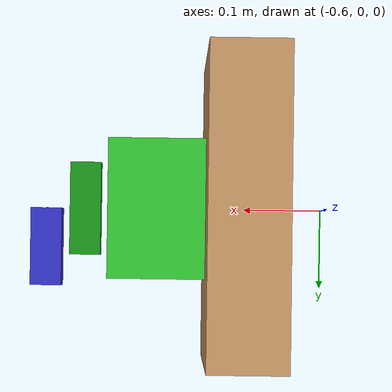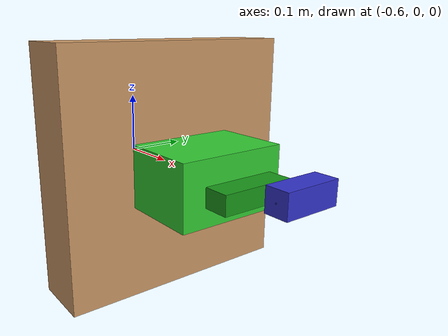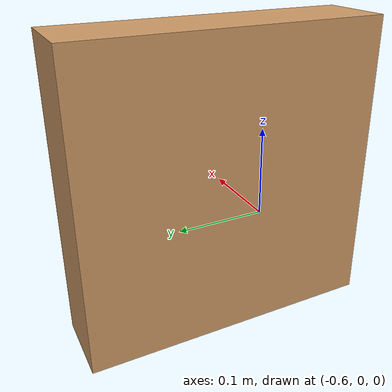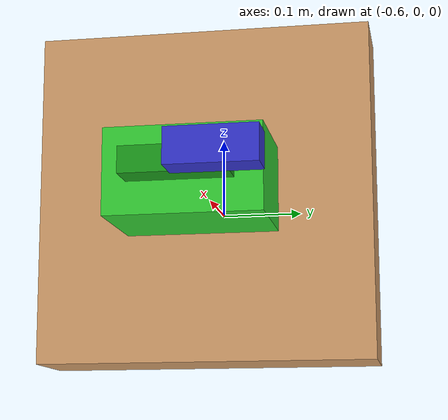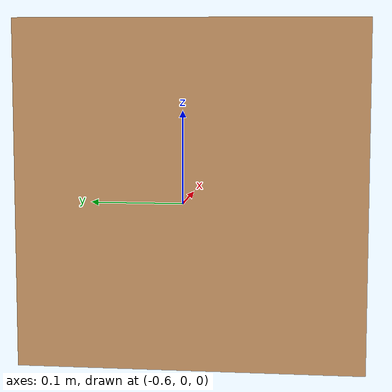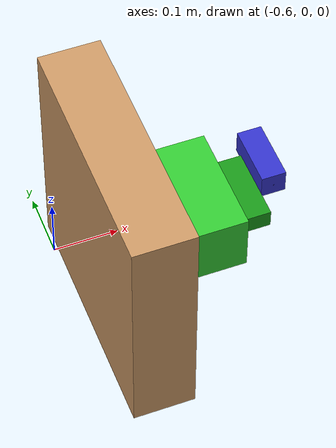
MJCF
<mujoco model="servo_demo">

  <option gravity="0 0 -9.81"/>

	<worldbody>

		<body name="wall" pos="-0.5 0 0">
			<geom type="box" size="0.05 0.2 0.2" rgba="0.8 0.6 0.4 1"/>

			<body name="servo" pos="0.1 0 0" euler="0 90 0">
				<geom type="box" size="0.05 0.09 0.075" rgba="0.2 0.8 0.2 1"/>

				<body name="servo_head" pos="0 0 0.105" >
					<geom type="box" size="0.015 0.06 0.02" rgba="0.1 0.6 0.1 1"/>
          <joint name="servo_hinge" type="hinge" axis="0 0 1" damping="0.02" frictionloss="0.005"/>

          <body name="attachmentPoint" pos="0 0 0.05">
            <geom type="box" size="0.001 0.001 0.001" rgba="0.2 0.2 0.8 1"/>
            <joint name="demo_hinge" type="hinge" axis="0 0 1" range="-7 7" damping="0.002"/>

            <body name="demo_object" pos="0 0.05 0">
              <geom type="box" size="0.02 0.05 0.02" rgba="0.2 0.2 0.8 1"/>
            </body>
          </body>
				</body>

			</body>

		</body>

	</worldbody>

  <actuator>
    <position joint="servo_hinge" kp="1" kv="0.05"/>
    <motor joint="demo_hinge" gear="100"/>
  </actuator>

</mujoco>
